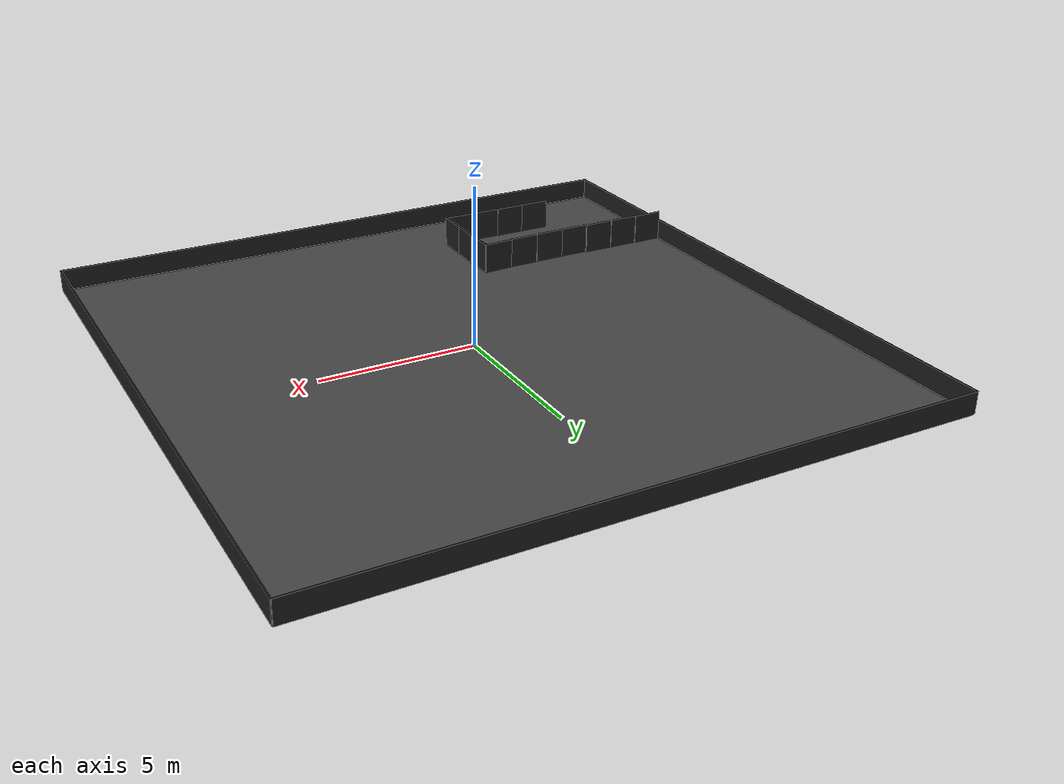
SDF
<sdf version="1.6">
 <world name="default">
  <model name="labrob_ground">
   <static>1</static>
   <link name="link">
    <collision name="collision">
     <geometry><plane><normal>0 0 1</normal><size>20 20</size></plane></geometry>
     <surface><contact><collide_bitmask>2</collide_bitmask></contact></surface>
    </collision>
    <visual name="visual">
     <cast_shadows>0</cast_shadows>
     <geometry><plane><normal>0 0 1</normal><size>20 20</size></plane></geometry>
     <material>
      <script>
       <uri>model://labrob_ground/materials/scripts/</uri>
       <uri>model://labrob_ground/materials/textures/</uri>
       <name>Labrob/AsphaltGround</name>
      </script>
     </material>
    </visual>
   </link>
  </model>
  <light name="sun" type="directional">
   <pose>0 0 10 0 -0 0</pose>
   <diffuse>0.8 0.8 0.8 1</diffuse>
   <specular>0.1 0.1 0.1 1</specular>
   <attenuation>
    <range>1000</range>
    <constant>0.9</constant>
    <linear>0.01</linear>
    <quadratic>0.001</quadratic>
   </attenuation>
   <direction>-0.5 0.5 -1</direction>
  </light>
  <model name="borders">
   <static>1</static>
   <link name="chassis_pos_x">
    <pose>10 0 0.35 0 -0 1.57079</pose>
    <collision name="collision_pos_x"><geometry><box><size>20 0.05 0.7</size></box></geometry></collision>
    <visual name="visual">
     <geometry><box><size>20 0.05 0.7</size></box></geometry>
     <material>
      <ambient>0.1 0.1 0.1 1</ambient>
      <diffuse>0.1 0.1 0.1 1</diffuse>
      <specular>0.1 0.1 0.1 1</specular>
      <emissive>0 0 0 0</emissive>
     </material>
    </visual>
    <sensor name="contact_sensor_1" type="contact">
     <plugin name="my_contact_plugin" filename="libgazebo_ros_bumper.so">
      <bumperTopicName>border_bumper</bumperTopicName>
      <frameName>world</frameName>
     </plugin>
     <contact><collision>collision_pos_x</collision><topic>__default_topic__</topic></contact>
    </sensor>
   </link>
   <link name="chassis_neg_x">
    <pose>-10 0 0.35 0 -0 1.57079</pose>
    <collision name="collision_neg_x"><geometry><box><size>20 0.05 0.7</size></box></geometry></collision>
    <visual name="visual">
     <geometry><box><size>20 0.05 0.7</size></box></geometry>
     <material>
      <ambient>0.1 0.1 0.1 1</ambient>
      <diffuse>0.1 0.1 0.1 1</diffuse>
      <specular>0.1 0.1 0.1 1</specular>
      <emissive>0 0 0 0</emissive>
     </material>
    </visual>
    <sensor name="contact_sensor_2" type="contact">
     <plugin name="my_contact_plugin" filename="libgazebo_ros_bumper.so">
      <bumperTopicName>border_bumper</bumperTopicName>
      <frameName>world</frameName>
     </plugin>
     <contact><collision>collision_neg_x</collision><topic>__default_topic__</topic></contact>
    </sensor>
   </link>
   <link name="chassis_pos_y">
    <pose>0 10 0.35 0 -0 0</pose>
    <collision name="collision_pos_y"><geometry><box><size>20 0.05 0.7</size></box></geometry></collision>
    <visual name="visual">
     <geometry><box><size>20 0.05 0.7</size></box></geometry>
     <material>
      <ambient>0.1 0.1 0.1 1</ambient>
      <diffuse>0.1 0.1 0.1 1</diffuse>
      <specular>0.1 0.1 0.1 1</specular>
      <emissive>0 0 0 0</emissive>
     </material>
    </visual>
    <sensor name="contact_sensor_3" type="contact">
     <plugin name="my_contact_plugin" filename="libgazebo_ros_bumper.so">
      <bumperTopicName>border_bumper</bumperTopicName>
      <frameName>world</frameName>
     </plugin>
     <contact><collision>collision_pos_y</collision><topic>__default_topic__</topic></contact>
    </sensor>
   </link>
   <link name="chassis_neg_y">
    <pose>0 -10 0.35 0 -0 0</pose>
    <collision name="collision_neg_y"><geometry><box><size>20 0.05 0.7</size></box></geometry></collision>
    <visual name="visual">
     <geometry><box><size>20 0.05 0.7</size></box></geometry>
     <material>
      <ambient>0.1 0.1 0.1 1</ambient>
      <diffuse>0.1 0.1 0.1 1</diffuse>
      <specular>0.1 0.1 0.1 1</specular>
      <emissive>0 0 0 0</emissive>
     </material>
    </visual>
    <sensor name="contact_sensor_4" type="contact">
     <plugin name="my_contact_plugin" filename="libgazebo_ros_bumper.so">
      <bumperTopicName>border_bumper</bumperTopicName>
      <frameName>world</frameName>
     </plugin>
     <contact><collision>collision_neg_y</collision><topic>__default_topic__</topic></contact>
    </sensor>
   </link>
  </model>
  <gravity>0 0 -9.8</gravity>
  <magnetic_field>6e-06 2.3e-05 -4.2e-05</magnetic_field>
  <atmosphere type="adiabatic"/>
  <physics name="default_physics" default="0" type="ode">
   <max_step_size>0.001</max_step_size>
   <real_time_factor>1</real_time_factor>
   <real_time_update_rate>1000</real_time_update_rate>
  </physics>
  <scene><ambient>0.4 0.4 0.4 1</ambient><background>0.7 0.7 0.7 1</background><shadows>1</shadows></scene>
  <spherical_coordinates>
   <surface_model>EARTH_WGS84</surface_model>
   <latitude_deg>0</latitude_deg>
   <longitude_deg>0</longitude_deg>
   <elevation>0</elevation>
   <heading_deg>0</heading_deg>
  </spherical_coordinates>
  <model name="barrier_1">
   <static>1</static>
   <link name="chassis">
    <pose>0 0 0.5 0 -0 0</pose>
    <collision name="barrier_collision"><geometry><box><size>1 0.05 1</size></box></geometry></collision>
    <visual name="visual">
     <geometry><box><size>1 0.05 1</size></box></geometry>
     <material>
      <ambient>0.1 0.1 0.1 1</ambient>
      <diffuse>0.1 0.1 0.1 1</diffuse>
      <specular>0.1 0.1 0.1 1</specular>
      <emissive>0 0 0 0</emissive>
     </material>
    </visual>
    <sensor name="contact_sensor_1" type="contact">
     <plugin name="my_contact_plugin" filename="libgazebo_ros_bumper.so">
      <bumperTopicName>obstacle_bumper</bumperTopicName>
      <frameName>world</frameName>
     </plugin>
     <contact><collision>barrier_collision</collision><topic>__default_topic__</topic></contact>
    </sensor>
   </link>
   <pose>-9.48602 -4.9786 0 0 -0 0</pose>
  </model>
  <model name="barrier_1_0">
   <static>1</static>
   <link name="chassis">
    <pose>0 0 0.5 0 -0 0</pose>
    <collision name="barrier_collision"><geometry><box><size>1 0.05 1</size></box></geometry></collision>
    <visual name="visual">
     <geometry><box><size>1 0.05 1</size></box></geometry>
     <material>
      <ambient>0.1 0.1 0.1 1</ambient>
      <diffuse>0.1 0.1 0.1 1</diffuse>
      <specular>0.1 0.1 0.1 1</specular>
      <emissive>0 0 0 0</emissive>
     </material>
    </visual>
    <sensor name="contact_sensor_1" type="contact">
     <plugin name="my_contact_plugin" filename="libgazebo_ros_bumper.so">
      <bumperTopicName>obstacle_bumper</bumperTopicName>
      <frameName>world</frameName>
     </plugin>
     <contact><collision>barrier_collision</collision><topic>__default_topic__</topic></contact>
    </sensor>
   </link>
   <pose>-8.48336 -5.00092 0 0 -0 0</pose>
  </model>
  <model name="barrier_1_1">
   <static>1</static>
   <link name="chassis">
    <pose>0 0 0.5 0 -0 0</pose>
    <collision name="barrier_collision"><geometry><box><size>1 0.05 1</size></box></geometry></collision>
    <visual name="visual">
     <geometry><box><size>1 0.05 1</size></box></geometry>
     <material>
      <ambient>0.1 0.1 0.1 1</ambient>
      <diffuse>0.1 0.1 0.1 1</diffuse>
      <specular>0.1 0.1 0.1 1</specular>
      <emissive>0 0 0 0</emissive>
     </material>
    </visual>
    <sensor name="contact_sensor_1" type="contact">
     <plugin name="my_contact_plugin" filename="libgazebo_ros_bumper.so">
      <bumperTopicName>obstacle_bumper</bumperTopicName>
      <frameName>world</frameName>
     </plugin>
     <contact><collision>barrier_collision</collision><topic>__default_topic__</topic></contact>
    </sensor>
   </link>
   <pose>-7.47356 -5.001 0 0 -0 0</pose>
  </model>
  <model name="barrier_1_2">
   <static>1</static>
   <link name="chassis">
    <pose>0 0 0.5 0 -0 0</pose>
    <collision name="barrier_collision"><geometry><box><size>1 0.05 1</size></box></geometry></collision>
    <visual name="visual">
     <geometry><box><size>1 0.05 1</size></box></geometry>
     <material>
      <ambient>0.1 0.1 0.1 1</ambient>
      <diffuse>0.1 0.1 0.1 1</diffuse>
      <specular>0.1 0.1 0.1 1</specular>
      <emissive>0 0 0 0</emissive>
     </material>
    </visual>
    <sensor name="contact_sensor_1" type="contact">
     <plugin name="my_contact_plugin" filename="libgazebo_ros_bumper.so">
      <bumperTopicName>obstacle_bumper</bumperTopicName>
      <frameName>world</frameName>
     </plugin>
     <contact><collision>barrier_collision</collision><topic>__default_topic__</topic></contact>
    </sensor>
   </link>
   <pose>-6.50059 -5.0467 0 0 -0 0</pose>
  </model>
  <model name="barrier_1_3">
   <static>1</static>
   <link name="chassis">
    <pose>0 0 0.5 0 -0 0</pose>
    <collision name="barrier_collision"><geometry><box><size>1 0.05 1</size></box></geometry></collision>
    <visual name="visual">
     <geometry><box><size>1 0.05 1</size></box></geometry>
     <material>
      <ambient>0.1 0.1 0.1 1</ambient>
      <diffuse>0.1 0.1 0.1 1</diffuse>
      <specular>0.1 0.1 0.1 1</specular>
      <emissive>0 0 0 0</emissive>
     </material>
    </visual>
    <sensor name="contact_sensor_1" type="contact">
     <plugin name="my_contact_plugin" filename="libgazebo_ros_bumper.so">
      <bumperTopicName>obstacle_bumper</bumperTopicName>
      <frameName>world</frameName>
     </plugin>
     <contact><collision>barrier_collision</collision><topic>__default_topic__</topic></contact>
    </sensor>
   </link>
   <pose>-5.50677 -5.04106 0 0 -0 0</pose>
  </model>
  <model name="barrier_1_4">
   <static>1</static>
   <link name="chassis">
    <pose>0 0 0.5 0 -0 0</pose>
    <collision name="barrier_collision"><geometry><box><size>1 0.05 1</size></box></geometry></collision>
    <visual name="visual">
     <geometry><box><size>1 0.05 1</size></box></geometry>
     <material>
      <ambient>0.1 0.1 0.1 1</ambient>
      <diffuse>0.1 0.1 0.1 1</diffuse>
      <specular>0.1 0.1 0.1 1</specular>
      <emissive>0 0 0 0</emissive>
     </material>
    </visual>
    <sensor name="contact_sensor_1" type="contact">
     <plugin name="my_contact_plugin" filename="libgazebo_ros_bumper.so">
      <bumperTopicName>obstacle_bumper</bumperTopicName>
      <frameName>world</frameName>
     </plugin>
     <contact><collision>barrier_collision</collision><topic>__default_topic__</topic></contact>
    </sensor>
   </link>
   <pose>-4.48668 -5.02215 0 0 -0 0</pose>
  </model>
  <model name="barrier_1_5">
   <static>1</static>
   <link name="chassis">
    <pose>0 0 0.5 0 -0 0</pose>
    <collision name="barrier_collision"><geometry><box><size>1 0.05 1</size></box></geometry></collision>
    <visual name="visual">
     <geometry><box><size>1 0.05 1</size></box></geometry>
     <material>
      <ambient>0.1 0.1 0.1 1</ambient>
      <diffuse>0.1 0.1 0.1 1</diffuse>
      <specular>0.1 0.1 0.1 1</specular>
      <emissive>0 0 0 0</emissive>
     </material>
    </visual>
    <sensor name="contact_sensor_1" type="contact">
     <plugin name="my_contact_plugin" filename="libgazebo_ros_bumper.so">
      <bumperTopicName>obstacle_bumper</bumperTopicName>
      <frameName>world</frameName>
     </plugin>
     <contact><collision>barrier_collision</collision><topic>__default_topic__</topic></contact>
    </sensor>
   </link>
   <pose>-4.52684 -7.87423 0 0 -0 0</pose>
  </model>
  <model name="barrier_1_6">
   <static>1</static>
   <link name="chassis">
    <pose>0 0 0.5 0 -0 0</pose>
    <collision name="barrier_collision"><geometry><box><size>1 0.05 1</size></box></geometry></collision>
    <visual name="visual">
     <geometry><box><size>1 0.05 1</size></box></geometry>
     <material>
      <ambient>0.1 0.1 0.1 1</ambient>
      <diffuse>0.1 0.1 0.1 1</diffuse>
      <specular>0.1 0.1 0.1 1</specular>
      <emissive>0 0 0 0</emissive>
     </material>
    </visual>
    <sensor name="contact_sensor_1" type="contact">
     <plugin name="my_contact_plugin" filename="libgazebo_ros_bumper.so">
      <bumperTopicName>obstacle_bumper</bumperTopicName>
      <frameName>world</frameName>
     </plugin>
     <contact><collision>barrier_collision</collision><topic>__default_topic__</topic></contact>
    </sensor>
   </link>
   <pose>-5.50144 -7.85589 0 0 -0 0</pose>
  </model>
  <model name="barrier_1_7">
   <static>1</static>
   <link name="chassis">
    <pose>0 0 0.5 0 -0 0</pose>
    <collision name="barrier_collision"><geometry><box><size>1 0.05 1</size></box></geometry></collision>
    <visual name="visual">
     <geometry><box><size>1 0.05 1</size></box></geometry>
     <material>
      <ambient>0.1 0.1 0.1 1</ambient>
      <diffuse>0.1 0.1 0.1 1</diffuse>
      <specular>0.1 0.1 0.1 1</specular>
      <emissive>0 0 0 0</emissive>
     </material>
    </visual>
    <sensor name="contact_sensor_1" type="contact">
     <plugin name="my_contact_plugin" filename="libgazebo_ros_bumper.so">
      <bumperTopicName>obstacle_bumper</bumperTopicName>
      <frameName>world</frameName>
     </plugin>
     <contact><collision>barrier_collision</collision><topic>__default_topic__</topic></contact>
    </sensor>
   </link>
   <pose>-6.48231 -7.85508 0 0 -0 0</pose>
  </model>
  <model name="barrier_1_8">
   <static>1</static>
   <link name="chassis">
    <pose>0 0 0.5 0 -0 0</pose>
    <collision name="barrier_collision"><geometry><box><size>1 0.05 1</size></box></geometry></collision>
    <visual name="visual">
     <geometry><box><size>1 0.05 1</size></box></geometry>
     <material>
      <ambient>0.1 0.1 0.1 1</ambient>
      <diffuse>0.1 0.1 0.1 1</diffuse>
      <specular>0.1 0.1 0.1 1</specular>
      <emissive>0 0 0 0</emissive>
     </material>
    </visual>
    <sensor name="contact_sensor_1" type="contact">
     <plugin name="my_contact_plugin" filename="libgazebo_ros_bumper.so">
      <bumperTopicName>obstacle_bumper</bumperTopicName>
      <frameName>world</frameName>
     </plugin>
     <contact><collision>barrier_collision</collision><topic>__default_topic__</topic></contact>
    </sensor>
   </link>
   <pose>-2.9722 -6.4336 0 0 -0 1.52839</pose>
  </model>
  <model name="barrier_2">
   <static>1</static>
   <link name="chassis">
    <pose>0 0 0.5 0 -0 0</pose>
    <collision name="barrier_collision"><geometry><box><size>1 0.05 1</size></box></geometry></collision>
    <visual name="visual">
     <geometry><box><size>1 0.05 1</size></box></geometry>
     <material>
      <ambient>0.1 0.1 0.1 1</ambient>
      <diffuse>0.1 0.1 0.1 1</diffuse>
      <specular>0.1 0.1 0.1 1</specular>
      <emissive>0 0 0 0</emissive>
     </material>
    </visual>
    <collision name="barrier_collision2">
     <pose>-0.475 0.525 0 0 -0 1.57</pose>
     <geometry><box><size>1 0.05 1</size></box></geometry>
    </collision>
    <visual name="visual2">
     <pose>-0.475 0.525 0 0 -0 1.57</pose>
     <geometry><box><size>1 0.05 1</size></box></geometry>
     <material>
      <ambient>0.1 0.1 0.1 1</ambient>
      <diffuse>0.1 0.1 0.1 1</diffuse>
      <specular>0.1 0.1 0.1 1</specular>
      <emissive>0 0 0 0</emissive>
     </material>
    </visual>
    <sensor name="contact_sensor_1" type="contact">
     <plugin name="my_contact_plugin" filename="libgazebo_ros_bumper.so">
      <bumperTopicName>obstacle_bumper</bumperTopicName>
      <frameName>world</frameName>
     </plugin>
     <contact><collision>barrier_collision</collision><topic>__default_topic__</topic></contact>
    </sensor>
    <sensor name="contact_sensor_2" type="contact">
     <plugin name="my_contact_plugin" filename="libgazebo_ros_bumper.so">
      <bumperTopicName>obstacle_bumper</bumperTopicName>
      <frameName>world</frameName>
     </plugin>
     <contact><collision>barrier_collision2</collision><topic>__default_topic__</topic></contact>
    </sensor>
   </link>
   <pose>-3.48781 -4.9762 0 0 0 -3.08623</pose>
  </model>
  <model name="barrier_2_0">
   <static>1</static>
   <link name="chassis">
    <pose>0 0 0.5 0 -0 0</pose>
    <collision name="barrier_collision"><geometry><box><size>1 0.05 1</size></box></geometry></collision>
    <visual name="visual">
     <geometry><box><size>1 0.05 1</size></box></geometry>
     <material>
      <ambient>0.1 0.1 0.1 1</ambient>
      <diffuse>0.1 0.1 0.1 1</diffuse>
      <specular>0.1 0.1 0.1 1</specular>
      <emissive>0 0 0 0</emissive>
     </material>
    </visual>
    <collision name="barrier_collision2">
     <pose>-0.475 0.525 0 0 -0 1.57</pose>
     <geometry><box><size>1 0.05 1</size></box></geometry>
    </collision>
    <visual name="visual2">
     <pose>-0.475 0.525 0 0 -0 1.57</pose>
     <geometry><box><size>1 0.05 1</size></box></geometry>
     <material>
      <ambient>0.1 0.1 0.1 1</ambient>
      <diffuse>0.1 0.1 0.1 1</diffuse>
      <specular>0.1 0.1 0.1 1</specular>
      <emissive>0 0 0 0</emissive>
     </material>
    </visual>
    <sensor name="contact_sensor_1" type="contact">
     <plugin name="my_contact_plugin" filename="libgazebo_ros_bumper.so">
      <bumperTopicName>obstacle_bumper</bumperTopicName>
      <frameName>world</frameName>
     </plugin>
     <contact><collision>barrier_collision</collision><topic>__default_topic__</topic></contact>
    </sensor>
    <sensor name="contact_sensor_2" type="contact">
     <plugin name="my_contact_plugin" filename="libgazebo_ros_bumper.so">
      <bumperTopicName>obstacle_bumper</bumperTopicName>
      <frameName>world</frameName>
     </plugin>
     <contact><collision>barrier_collision2</collision><topic>__default_topic__</topic></contact>
    </sensor>
   </link>
   <pose>-2.98151 -7.41649 0 0 -0 1.55601</pose>
  </model>
 </world>
</sdf>
